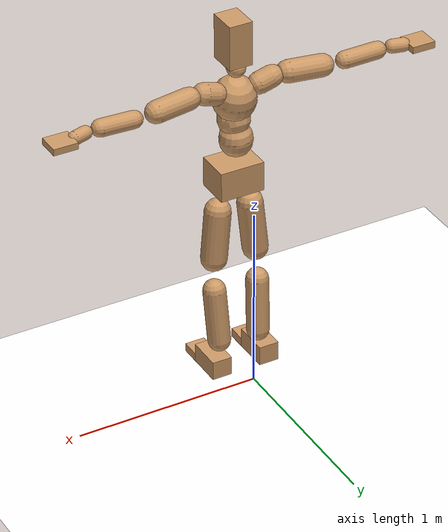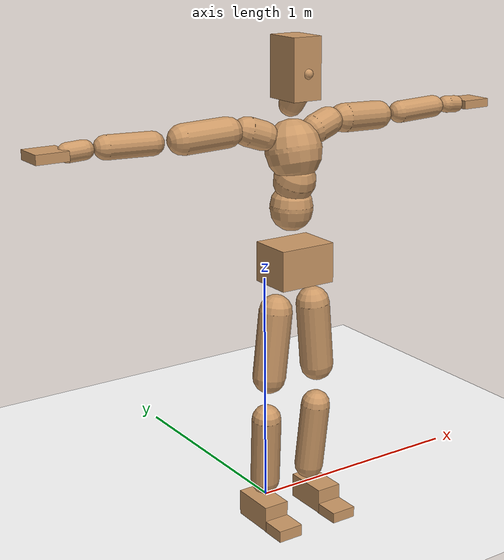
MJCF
<mujoco model="humanoid">
  <option integrator="implicitfast" />

  <visual>
    <global offwidth="1280" offheight="960" />
    <headlight active="1" ambient="0.34 0.34 0.34" diffuse="0.5 0.5 0.5" />
  </visual>

  <default>
    <joint damping="2" stiffness="2" armature="0.01" limited="true" solimplimit="0 .99 .01" />
    <geom condim="1" friction="0.7 0.005 0.0001" solimp=".99 .99 .003" solref="0.015 1" margin="0.001" rgba="0.8 0.6 .4 1" />
    <default class="smplcontact">
      <geom condim="3" friction="1. 0.005 0.0001" solref="0.015 1" solimp="0.98 0.98 0.001" priority="1" />
    </default>
    <default class="stiff_medium">
      <joint stiffness="10" />
    </default>
    <default class="stiff_medium_higher">
      <joint stiffness="50" />
    </default>
    <default class="stiff_high">
      <joint stiffness="100" />
    </default>
  </default>

  <asset>
    <texture type="skybox" builtin="gradient" rgb1="0.99 0.99 0.99" rgb2="0.608 0.828 0.892" width="100" />
    <texture builtin="flat" height="1278" mark="cross" markrgb="1 1 1" name="texgeom" random="0.01" rgb1="0.8 0.6 0.4" rgb2="0.8 0.6 0.4" type="cube" width="127" />
    <texture name="texplane" type="2d" builtin="checker" markrgb="1 1 1" rgb1="0.756 0.772 0.76" rgb2="0.6 0.6 0.6" width="100" height="100" />
    <material name="MatPlane" reflectance="0.5" texture="texplane" texrepeat="1 1" texuniform="true" />
    <material name="geom" texture="texgeom" texuniform="true" />
  </asset>

  <worldbody>
    <light name="tracking_light" pos="0 0 7" dir="0 0 -1" directional="true" cutoff="100" exponent="1" diffuse="1 1 1" specular="0.1 0.1 0.1" mode="trackcom" />
    <camera name="back" pos="0 3 2.4" xyaxes="-1 0 0 0 -1 2" mode="trackcom" />
    <camera name="side" pos="-3 0 2.4" xyaxes="0 -1 0 1 0 2" mode="trackcom" />
    <camera name="front_side" pos="-2.8 -2.8 0.8" xyaxes="0.5 -0.5 0 0.1 0.1 1" mode="trackcom" />
    <geom condim="3" name="floor" pos="0 0 0" rgba="1 1 1 1" size="100 100 .2" type="plane" material="MatPlane" />
    <body name="Pelvis" pos="-0.0018 -0.2233 1.13976" euler="90 0 0">
      <site name="Pelvis" size="0.01" />
      <freejoint name="Pelvis" />
      <geom type="box" pos="-0.0000 -0.0121 -0.0055" size="0.120925 0.0816726 0.0938896" quat="1.0000 0.0000 0.0000 0.0000" density="3165.830099" name="Pelvis" />
      <body name="L_Hip" pos="0.0847066 -0.111398 -0.00828784">
        <joint name="L_Hip_x" type="hinge" pos="0 0 0" axis="1 0 0" stiffness="18.556347" range="-160.0 22.92" class="stiff_medium" damping="30.570907053409652" armature="0.02238420353048563"/>
        <joint name="L_Hip_y" type="hinge" pos="0 0 0" axis="0 1 0" stiffness="18.5209526" range="-70.0 70.0" class="stiff_medium" damping="19.536497972684764" armature="0.020607727975974405"/>
        <joint name="L_Hip_z" type="hinge" pos="0 0 0" axis="0 0 1" stiffness="18.5280481" range="-28.65 90.0" class="stiff_medium" damping="20.366246980150123" armature="0.022386816669397246"/>
        <geom type="capsule" density="2040.816327" fromto="0.00840972 -0.09141 -0.00109692 0.0333951 -0.365884 -0.00438768" size="0.0695688" name="L_Hip" />
        <body name="L_Knee" pos="0.0418048 -0.457294 -0.0054846">
          <joint name="L_Knee_x" type="hinge" pos="0 0 0" axis="1 0 0" range="-5.16 171.89" damping="16.11973156776065" armature="0.02205979425157348" stiffness="3.68098608"/>
          <joint name="L_Knee_y" type="hinge" pos="0 0 0" axis="0 1 0" range="-4.58 6.88" damping="15.505784638232782" armature="0.02030901465420849" stiffness="3.69954798"/>
          <joint name="L_Knee_z" type="hinge" pos="0 0 0" axis="0 0 1" range="-6.88 4.58" damping="16.098641564312224" armature="0.02207225123941547" stiffness="3.66928844"/>
          <geom type="capsule" density="1234.567901" fromto="-0.00329076 -0.0970165 -0.0106036 -0.0132849 -0.388066 -0.042658" size="0.0611979" name="L_Knee" />
          <body name="L_Ankle" pos="-0.0165757 -0.485082 -0.0532616">
            <joint name="L_Ankle_x" type="hinge" pos="0 0 0" axis="1 0 0" range="-45.84 45.84" class="stiff_medium" damping="11.405556159537193" armature="0.020482326295280223" stiffness="17.642135500000002"/>
            <joint name="L_Ankle_y" type="hinge" pos="0 0 0" axis="0 1 0" range="-74.48 22.92" class="stiff_medium" damping="5.692618968601505" armature="0.020409416132761246" stiffness="17.642135"/>
            <joint name="L_Ankle_z" type="hinge" pos="0 0 0" axis="0 0 1" range="-4.58 4.58" class="stiff_medium" damping="11.251310979897617" armature="0.019932082757234494" stiffness="17.642132299999997"/>
            <geom type="box" pos="0.028398 -0.0291293 0.029495" size="0.054637 0.0524877 0.096152" quat="1.0000 0.0000 0.0000 0.0000" density="449.071558" name="L_Ankle" class="smplcontact" />
            <body name="L_Toe" pos="0.0321763 -0.068009 0.145403">
              <joint name="L_Toe_x" type="hinge" pos="0 0 0" axis="1 0 0" range="-91.67 22.92" armature="0.01965528842011614" damping="3.7243037939216093" stiffness="3.5284241199999995"/>
              <joint name="L_Toe_y" type="hinge" pos="0 0 0" axis="0 1 0" range="-4.58 4.58" armature="0.019320617812724785" damping="3.6924608656611086" stiffness="3.52842424"/>
              <joint name="L_Toe_z" type="hinge" pos="0 0 0" axis="0 0 1" range="-4.58 4.58" armature="0.01864392114524846" damping="3.6272209423469683" stiffness="3.528424"/>
              <geom type="box" pos="-0.0036564 0.0067034 0.0302262" size="0.0540714 0.022624 0.0561075" quat="1.0000 0.0000 0.0000 0.0000" density="423.206892" name="L_Toe" class="smplcontact" />
            </body>
          </body>
        </body>
      </body>
      <body name="R_Hip" pos="-0.0825128 -0.110301 -0.00524084">
        <joint name="R_Hip_x" type="hinge" pos="0 0 0" axis="1 0 0" stiffness="18.556347" range="-160.0 22.92" class="stiff_medium" damping="30.570907053409652" armature="0.02238420353048563"/>
        <joint name="R_Hip_y" type="hinge" pos="0 0 0" axis="0 1 0" stiffness="18.5209526" range="-70.0 70.0" class="stiff_medium" damping="19.536497972684764" armature="0.020607727975974405"/>
        <joint name="R_Hip_z" type="hinge" pos="0 0 0" axis="0 0 1" stiffness="18.5280481" range="-90.0 28.65" class="stiff_medium" damping="20.366246980150123" armature="0.022386816669397246"/>
        <geom type="capsule" density="2040.816327" fromto="-0.00938476 -0.0932382 -0.00219384 -0.0372953 -0.373075 -0.00865348" size="0.0685507" name="R_Hip" />
        <body name="R_Knee" pos="-0.04668 -0.466313 -0.0108473">
          <joint name="R_Knee_x" type="hinge" pos="0 0 0" axis="1 0 0" range="-5.16 171.89" damping="16.11973156776065" armature="0.02205979425157348" stiffness="3.68098608"/>
          <joint name="R_Knee_y" type="hinge" pos="0 0 0" axis="0 1 0" range="-6.88 4.58" damping="15.505784638232782" armature="0.02030901465420849" stiffness="3.69954798"/>
          <joint name="R_Knee_z" type="hinge" pos="0 0 0" axis="0 0 1" range="-4.58 6.88" damping="16.098641564312224" armature="0.02207225123941547" stiffness="3.66928844"/>
          <geom type="capsule" density="1234.567901" fromto="0.00390016 -0.0971384 -0.0103598 0.0153569 -0.388432 -0.0411954" size="0.0611979" name="R_Knee" />
          <body name="R_Ankle" pos="0.019257 -0.48557 -0.0515552">
            <joint name="R_Ankle_x" type="hinge" pos="0 0 0" axis="1 0 0" range="-45.84 45.84" class="stiff_medium" damping="11.405556159537193" armature="0.020482326295280223" stiffness="17.642135500000002"/>
            <joint name="R_Ankle_y" type="hinge" pos="0 0 0" axis="0 1 0" range="-22.92 74.48" class="stiff_medium" damping="5.692618968601505" armature="0.020409416132761246" stiffness="17.642135"/>
            <joint name="R_Ankle_z" type="hinge" pos="0 0 0" axis="0 0 1" range="-4.58 4.58" class="stiff_medium" damping="11.251310979897617" armature="0.019932082757234494" stiffness="17.642132299999997"/>
            <geom type="box" pos="-0.0258386 -0.0212071 0.0312013" size="0.054637 0.0540714 0.0978488" quat="1.0000 0.0000 0.0000 0.0000" density="434.700981" name="R_Ankle" class="smplcontact" />
            <body name="R_Toe" pos="-0.0309575 -0.0586243 0.150278">
              <joint name="R_Toe_x" type="hinge" pos="0 0 0" axis="1 0 0" range="-91.67 22.92" armature="0.01965528842011614" damping="3.7243037939216093" stiffness="3.5284241199999995"/>
              <joint name="R_Toe_y" type="hinge" pos="0 0 0" axis="0 1 0" range="-4.58 4.58" armature="0.019320617812724785" damping="3.6924608656611086" stiffness="3.52842424"/>
              <joint name="R_Toe_z" type="hinge" pos="0 0 0" axis="0 0 1" range="-4.58 4.58" armature="0.01864392114524846" damping="3.6272209423469683" stiffness="3.528424"/>
              <geom type="box" pos="0.00511896 0.0054846 0.0276668" size="0.0541845 0.0244339 0.0557682" quat="1.0000 0.0000 0.0000 0.0000" density="407.384095" name="R_Toe" class="smplcontact" />
            </body>
          </body>
        </body>
      </body>
      <body name="Torso" pos="-0.0029375 0.128075 -0.0313725">
        <joint name="Torso_x" type="hinge" pos="0 0 0" axis="1 0 0" range="-25.78 57.3" class="stiff_medium" damping="25.974242984270614" armature="0.018337134669673637" stiffness="16.352034897959182"/>
        <joint name="Torso_y" type="hinge" pos="0 0 0" axis="0 1 0" range="-57.3 57.3" class="stiff_high" damping="37.72352159467362" armature="0.022216497527017185" stiffness="160.13596199999998"/>
        <joint name="Torso_z" type="hinge" pos="0 0 0" axis="0 0 1" range="-34.38 34.38" class="stiff_high" damping="35.791095156464266" armature="0.019674936704073866" stiffness="162.77085306122447"/>
        <geom type="capsule" density="2040.816327" fromto="0.0029375 0.07144 0.0005875 0.003525 0.0873025 0.000705" size="0.0869893" name="Torso" />
        <body name="Spine" pos="0.0064625 0.15886 0.0012925">
          <joint name="Spine_x" type="hinge" pos="0 0 0" axis="1 0 0" stiffness="16.04869" range="-25.78 57.3" class="stiff_medium" damping="25.06369727104499" armature="0.017396751756881733"/>
          <joint name="Spine_y" type="hinge" pos="0 0 0" axis="0 1 0" stiffness="16.0019376" range="-57.3 57.3" class="stiff_high" damping="15.092553260802195" armature="0.022241951414737476"/>
          <joint name="Spine_z" type="hinge" pos="0 0 0" axis="0 0 1" stiffness="31.837057600000005" range="-34.38 34.38" class="stiff_high" damping="21.453231213750016" armature="0.020077979536242362"/>
          <geom type="capsule" density="2040.816327" fromto="0.0008225 0.027965 0.013395 0.00094 0.0341925 0.01645" size="0.0854056" name="Spine" />
          <body name="Chest" pos="0.0017625 0.0621575 0.029845">
            <joint name="Chest_x" type="hinge" pos="0 0 0" axis="1 0 0" stiffness="15.784377916666665" range="-25.78 57.3" class="stiff_medium" damping="24.50394449532761" armature="0.01690682321751926"/>
            <joint name="Chest_y" type="hinge" pos="0 0 0" axis="0 1 0" stiffness="17.060357391304354" range="-57.3 57.3" class="stiff_high" damping="15.593786587091003" armature="0.022270761844473512"/>
            <joint name="Chest_z" type="hinge" pos="0 0 0" axis="0 0 1" stiffness="31.463411250000007" range="-34.38 34.38" class="stiff_high" damping="21.467063646392138" armature="0.020342624588454438"/>
            <geom type="capsule" density="2040.816327" fromto="-0.0010575 0.080135 -0.0203275 -0.001175 0.0978775 -0.02491" size="0.113346" name="Chest" />
            <body name="Neck" pos="-0.00329 0.251333 -0.0504075">
              <joint name="Neck_x" type="hinge" pos="0 0 0" axis="1 0 0" range="-28.65 57.3" class="stiff_medium_higher" damping="12.386562860931818" armature="0.012503119690239761" stiffness="61.355463"/>
              <joint name="Neck_y" type="hinge" pos="0 0 0" axis="0 1 0" range="-40.11 40.11" class="stiff_medium_higher" damping="12.478153737546902" armature="0.01276907920155923" stiffness="60.969283"/>
              <joint name="Neck_z" type="hinge" pos="0 0 0" axis="0 0 1" range="-40.11 40.11" class="stiff_medium_higher" damping="12.26752320269316" armature="0.0124766525597076" stiffness="60.309495999999996"/>
              <geom type="capsule" density="1000" fromto="0.001175 0.015275 0.0121025 0.0048175 0.0611 0.0482925" size="0.0493203" name="Neck" />
              <body name="Head" pos="0.00542776 0.067847 0.0535469">
                <joint name="Head_x" type="hinge" pos="0 0 0" axis="1 0 0" range="-28.65 57.3" class="stiff_medium_higher" damping="2.4255506430620355" armature="0.01239051994530892" stiffness="59.352795"/>
                <joint name="Head_y" type="hinge" pos="0 0 0" axis="0 1 0" range="-40.11 40.11" class="stiff_medium_higher" damping="2.4255481875524256" armature="0.012390490265480697" stiffness="59.352817"/>
                <joint name="Head_z" type="hinge" pos="0 0 0" axis="0 0 1" range="-40.11 40.11" class="stiff_medium_higher" damping="2.425550960116784" armature="0.012390522349509277" stiffness="59.35279899999999"/>
                <geom type="box" pos="-0.00438396 0.0914369 -0.0121081" size="0.0632543 0.120455 0.0793288" quat="1.0000 0.0000 0.0000 0.0000" density="1018.069894" name="Head" />
                <geom type="capsule" name="nose" size="0.020876 0.010438" pos="0 0.073066 0.05219" quat="1 0 0 0" mass="0" contype="0" conaffinity="0" />
              </body>
            </body>
            <body name="L_Thorax" pos="0.0960414 0.148328 -0.0415611">
              <joint name="L_Thorax_x" type="hinge" pos="0 0 0" axis="1 0 0" range="-10.89 4.58" class="stiff_medium_higher" damping="39.476533342108986" armature="0.021085897405615135" stiffness="92.38382500000002"/>
              <joint name="L_Thorax_y" type="hinge" pos="0 0 0" axis="0 1 0" range="-28.65 17.19" class="stiff_medium_higher" damping="40.73278921234496" armature="0.022409102271800662" stiffness="92.5494525"/>
              <joint name="L_Thorax_z" type="hinge" pos="0 0 0" axis="0 0 1" range="-31.51 40.11" class="stiff_medium_higher" damping="40.73318704701572" armature="0.022410300585117983" stiffness="92.5463115"/>
              <geom type="capsule" density="1000" fromto="0.0221822 0.00743468 -0.00219384 0.0887286 0.0297387 -0.00865348" size="0.0589355" name="L_Thorax" />
              <body name="L_Shoulder" pos="0.110911 0.0371734 -0.0108473">
                <joint name="L_Shoulder_x" type="hinge" pos="0 0 0" axis="1 0 0" range="-97.4 97.4" class="stiff_medium" damping="11.688234725418583" armature="0.02055721141363154" stiffness="18.4599766"/>
                <joint name="L_Shoulder_y" type="hinge" pos="0 0 0" axis="0 1 0" range="-108.86 80.21" class="stiff_medium" damping="12.200723490278284" armature="0.0223580515065574" stiffness="18.4941645"/>
                <joint name="L_Shoulder_z" type="hinge" pos="0 0 0" axis="0 0 1" range="-97.4 85.94" class="stiff_medium" damping="12.201472502190164" armature="0.022359565615843416" stiffness="18.4951828"/>
                <geom type="capsule" density="1000" fromto="0.0632557 -0.00316888 -0.0067034 0.253145 -0.0124318 -0.0268136" size="0.058483" name="L_Shoulder" />
                <body name="L_Elbow" pos="0.3164 -0.0156006 -0.033517">
                  <joint name="L_Elbow_x" type="hinge" pos="0 0 0" axis="1 0 0" range="-17.19 4.58" damping="9.514780576527448" armature="0.01973143027884173" stiffness="3.67053166"/>
                  <joint name="L_Elbow_y" type="hinge" pos="0 0 0" axis="0 1 0" range="-180.0 17.19" damping="10.072084516435584" armature="0.022110243642904755" stiffness="3.67058412"/>
                  <joint name="L_Elbow_z" type="hinge" pos="0 0 0" axis="0 0 1" range="-100.84 4.58" damping="10.072871319934917" armature="0.0221181824356007" stiffness="3.66983994"/>
                  <geom type="capsule" density="1000" fromto="0.0606962 0.00219384 -0.00024376 0.243029 0.00877536 -0.00109692" size="0.0458136" name="L_Elbow" />
                  <body name="L_Wrist" pos="0.303725 0.0109692 -0.00146256">
                    <joint name="L_Wrist_x" type="hinge" pos="0 0 0" axis="1 0 0" range="-180.0 22.92" armature="0.0195284286301062" damping="3.7381804060134542" stiffness="3.57785898"/>
                    <joint name="L_Wrist_y" type="hinge" pos="0 0 0" axis="0 1 0" range="-17.19 17.19" armature="0.021303450645872583" damping="3.9082738997252195" stiffness="3.5850072199999996"/>
                    <joint name="L_Wrist_z" type="hinge" pos="0 0 0" axis="0 0 1" range="-22.92 22.92" armature="0.021401534886897444" damping="3.916001931990902" stiffness="3.5827035800000004"/>
                    <geom type="capsule" density="1000" fromto="0.0204758 -0.00195008 -0.0036564 0.0819034 -0.0079222 -0.0146256" size="0.0359722" name="L_Wrist" class="smplcontact" />
                    <body name="L_Hand" pos="0.102379 -0.00999416 -0.0181601">
                      <joint name="L_Hand_x" type="hinge" pos="0 0 0" axis="1 0 0" range="-17.19 17.19" armature="0.01865225486239554" damping="3.6280347736162577" stiffness="3.52843032"/>
                      <joint name="L_Hand_y" type="hinge" pos="0 0 0" axis="0 1 0" range="-51.57 51.57" armature="0.020092416665066528" damping="3.7654929273555684" stiffness="3.528429960000001"/>
                      <joint name="L_Hand_z" type="hinge" pos="0 0 0" axis="0 0 1" range="-91.67 91.67" armature="0.02047631457398981" damping="3.801295616319528" stiffness="3.528429960000001"/>
                      <geom type="box" pos="0.0600868 0.0012188 -0.00706904" size="0.0661752 0.017873 0.0608586" quat="1.0000 0.0000 0.0000 0.0000" density="400.552564" name="L_Hand" class="smplcontact" />
                    </body>
                  </body>
                </body>
              </body>
            </body>
            <body name="R_Thorax" pos="-0.0996978 0.144793 -0.0470457">
              <joint name="R_Thorax_x" type="hinge" pos="0 0 0" axis="1 0 0" range="-10.89 4.58" class="stiff_medium_higher" damping="39.476533342108986" armature="0.021085897405615135" stiffness="92.38382500000002"/>
              <joint name="R_Thorax_y" type="hinge" pos="0 0 0" axis="0 1 0" range="-17.19 28.65" class="stiff_medium_higher" damping="40.73278921234496" armature="0.022409102271800662" stiffness="92.5494525"/>
              <joint name="R_Thorax_z" type="hinge" pos="0 0 0" axis="0 0 1" range="-40.11 31.51" class="stiff_medium_higher" damping="40.73318704701572" armature="0.022410300585117983" stiffness="92.5463115"/>
              <geom type="capsule" density="1000" fromto="-0.023401 0.0079222 -0.00219384 -0.0936038 0.0316888 -0.00889724" size="0.0578043" name="R_Thorax" />
              <body name="R_Shoulder" pos="-0.117005 0.0397329 -0.0110911">
                <joint name="R_Shoulder_x" type="hinge" pos="0 0 0" axis="1 0 0" range="-97.4 97.4" class="stiff_medium" damping="11.688234725418583" armature="0.02055721141363154" stiffness="18.4599766"/>
                <joint name="R_Shoulder_y" type="hinge" pos="0 0 0" axis="0 1 0" range="-80.21 108.86" class="stiff_medium" damping="12.200723490278284" armature="0.0223580515065574" stiffness="18.4941645"/>
                <joint name="R_Shoulder_z" type="hinge" pos="0 0 0" axis="0 0 1" range="-85.94 97.4" class="stiff_medium" damping="12.201472502190164" armature="0.022359565615843416" stiffness="18.4951828"/>
                <geom type="capsule" density="1000" fromto="-0.0617932 -0.00329076 -0.00524084 -0.247416 -0.0130412 -0.0208415" size="0.0600667" name="R_Shoulder" />
                <body name="R_Elbow" pos="-0.30921 -0.01621 -0.0260823">
                  <joint name="R_Elbow_x" type="hinge" pos="0 0 0" axis="1 0 0" range="-17.19 4.58" damping="9.514780576527448" armature="0.01973143027884173" stiffness="3.67053166"/>
                  <joint name="R_Elbow_y" type="hinge" pos="0 0 0" axis="0 1 0" range="-17.19 180.0" damping="10.072084516435584" armature="0.022110243642904755" stiffness="3.67058412"/>
                  <joint name="R_Elbow_z" type="hinge" pos="0 0 0" axis="0 0 1" range="-4.58 100.84" damping="10.072871319934917" armature="0.0221181824356007" stiffness="3.66983994"/>
                  <geom type="capsule" density="1000" fromto="-0.0622807 0.00195008 -0.00134068 -0.248879 0.00755656 -0.00536272" size="0.046153" name="R_Elbow" />
                  <body name="R_Wrist" pos="-0.31116 0.00950664 -0.00682528">
                    <joint name="R_Wrist_x" type="hinge" pos="0 0 0" axis="1 0 0" range="-180.0 22.92" armature="0.0195284286301062" damping="3.7381804060134542" stiffness="3.57785898"/>
                    <joint name="R_Wrist_y" type="hinge" pos="0 0 0" axis="0 1 0" range="-17.19 17.19" armature="0.021303450645872583" damping="3.9082738997252195" stiffness="3.5850072199999996"/>
                    <joint name="R_Wrist_z" type="hinge" pos="0 0 0" axis="0 0 1" range="-22.92 22.92" armature="0.021401534886897444" damping="3.916001931990902" stiffness="3.5827035800000004"/>
                    <geom type="capsule" density="1000" fromto="-0.0205977 -0.00146256 -0.00255948 -0.0825128 -0.00597212 -0.010116" size="0.0368771" name="R_Wrist" class="smplcontact" />
                    <body name="R_Hand" pos="-0.10311 -0.00743468 -0.0125536">
                      <joint name="R_Hand_x" type="hinge" pos="0 0 0" axis="1 0 0" range="-17.19 17.19" armature="0.01865225486239554" damping="3.6280347736162577" stiffness="3.52843032"/>
                      <joint name="R_Hand_y" type="hinge" pos="0 0 0" axis="0 1 0" range="-51.57 51.57" armature="0.020092416665066528" damping="3.7654929273555684" stiffness="3.528429960000001"/>
                      <joint name="R_Hand_z" type="hinge" pos="0 0 0" axis="0 0 1" range="-91.67 91.67" armature="0.02047631457398981" damping="3.801295616319528" stiffness="3.528429960000001"/>
                      <geom type="box" pos="-0.0563086 -0.00109692 -0.00962852" size="0.0643653 0.0185517 0.0617635" quat="1.0000 0.0000 0.0000 0.0000" density="403.679611" name="R_Hand" class="smplcontact" />
                    </body>
                  </body>
                </body>
              </body>
            </body>
          </body>
        </body>
      </body>
    </body>
  </worldbody>
  <actuator>
    <general name="L_Hip_x" joint="L_Hip_x" biastype="affine" gainprm="533.1796372922157" biasprm="-399.5640973103921 -334.014246 -4.07612094045462" ctrllimited="true" ctrlrange="-1 1" forcerange="-668.028492 668.028492" />
    <general name="L_Hip_y" joint="L_Hip_y" biastype="affine" gainprm="407.2970203795134" biasprm="0.0 -333.3771468 -3.9072995945369526" ctrllimited="true" ctrlrange="-1 1" forcerange="-666.7542936 666.7542936" />
    <general name="L_Hip_z" joint="L_Hip_z" biastype="affine" gainprm="345.3164671416585" biasprm="178.55175102520647 -333.5048658 -4.0732493960300244" ctrllimited="true" ctrlrange="-1 1" forcerange="-667.0097316 667.0097316" />
    <general name="L_Knee_x" joint="L_Knee_x" biastype="affine" gainprm="511.85858007540855" biasprm="482.0230503020212 -331.2887472 -4.029932891940162" ctrllimited="true" ctrlrange="-1 1" forcerange="-662.5774944 662.5774944" />
    <general name="L_Knee_y" joint="L_Knee_y" biastype="affine" gainprm="33.2983844447108" biasprm="6.6829218344533015 -332.95931820000004 -3.8764461595581956" ctrllimited="true" ctrlrange="-1 1" forcerange="-665.9186364000001 665.9186364000001" />
    <general name="L_Knee_z" joint="L_Knee_z" biastype="affine" gainprm="33.02602852407205" biasprm="-6.6282605240284225 -330.2359596 -4.024660391078056" ctrllimited="true" ctrlrange="-1 1" forcerange="-660.4719192 660.4719192" />
    <general name="L_Ankle_x" joint="L_Ankle_x" biastype="affine" gainprm="127.03273231875863" biasprm="0.0 -158.7792195 -3.8018520531790645" ctrllimited="true" ctrlrange="-1 1" forcerange="-317.558439 317.558439" />
    <general name="L_Ankle_y" joint="L_Ankle_y" biastype="affine" gainprm="134.9584181629719" biasprm="-71.44205380372516 -158.77921500000002 -3.7950793124010036" ctrllimited="true" ctrlrange="-1 1" forcerange="-317.55843000000004 317.55843000000004" />
    <general name="L_Ankle_z" joint="L_Ankle_z" biastype="affine" gainprm="12.692186049060673" biasprm="0.0 -158.7791907 -3.7504369932992057" ctrllimited="true" ctrlrange="-1 1" forcerange="-317.5583814 317.5583814" />
    <general name="L_Toe_x" joint="L_Toe_x" biastype="affine" gainprm="127.02154015956204" biasprm="-76.20849014721956 -127.02326831999999 -1.4897215175686438" ctrllimited="true" ctrlrange="-1 1" forcerange="-254.04653663999997 254.04653663999997" />
    <general name="L_Toe_y" joint="L_Toe_y" biastype="affine" gainprm="10.153742450757049" biasprm="0.0 -127.02327264 -1.4769843462644436" ctrllimited="true" ctrlrange="-1 1" forcerange="-254.04654528 254.04654528" />
    <general name="L_Toe_z" joint="L_Toe_z" biastype="affine" gainprm="10.15374176010932" biasprm="0.0 -127.023264 -1.4508883769387875" ctrllimited="true" ctrlrange="-1 1" forcerange="-254.046528 254.046528" />
    <general name="R_Hip_x" joint="R_Hip_x" biastype="affine" gainprm="533.1796372922157" biasprm="-399.5640973103921 -334.014246 -4.07612094045462" ctrllimited="true" ctrlrange="-1 1" forcerange="-668.028492 668.028492" />
    <general name="R_Hip_y" joint="R_Hip_y" biastype="affine" gainprm="407.2970203795134" biasprm="0.0 -333.3771468 -3.9072995945369526" ctrllimited="true" ctrlrange="-1 1" forcerange="-666.7542936 666.7542936" />
    <general name="R_Hip_z" joint="R_Hip_z" biastype="affine" gainprm="345.3164671416585" biasprm="-178.55175102520647 -333.5048658 -4.0732493960300244" ctrllimited="true" ctrlrange="-1 1" forcerange="-667.0097316 667.0097316" />
    <general name="R_Knee_x" joint="R_Knee_x" biastype="affine" gainprm="511.85858007540855" biasprm="482.0230503020212 -331.2887472 -4.029932891940162" ctrllimited="true" ctrlrange="-1 1" forcerange="-662.5774944 662.5774944" />
    <general name="R_Knee_y" joint="R_Knee_y" biastype="affine" gainprm="33.2983844447108" biasprm="-6.6829218344533015 -332.95931820000004 -3.8764461595581956" ctrllimited="true" ctrlrange="-1 1" forcerange="-665.9186364000001 665.9186364000001" />
    <general name="R_Knee_z" joint="R_Knee_z" biastype="affine" gainprm="33.02602852407205" biasprm="6.6282605240284225 -330.2359596 -4.024660391078056" ctrllimited="true" ctrlrange="-1 1" forcerange="-660.4719192 660.4719192" />
    <general name="R_Ankle_x" joint="R_Ankle_x" biastype="affine" gainprm="127.03273231875863" biasprm="0.0 -158.7792195 -3.8018520531790645" ctrllimited="true" ctrlrange="-1 1" forcerange="-317.558439 317.558439" />
    <general name="R_Ankle_y" joint="R_Ankle_y" biastype="affine" gainprm="134.9584181629719" biasprm="71.44205380372516 -158.77921500000002 -3.7950793124010036" ctrllimited="true" ctrlrange="-1 1" forcerange="-317.55843000000004 317.55843000000004" />
    <general name="R_Ankle_z" joint="R_Ankle_z" biastype="affine" gainprm="12.692186049060673" biasprm="0.0 -158.7791907 -3.7504369932992057" ctrllimited="true" ctrlrange="-1 1" forcerange="-317.5583814 317.5583814" />
    <general name="R_Toe_x" joint="R_Toe_x" biastype="affine" gainprm="127.02154015956204" biasprm="-76.20849014721956 -127.02326831999999 -1.4897215175686438" ctrllimited="true" ctrlrange="-1 1" forcerange="-254.04653663999997 254.04653663999997" />
    <general name="R_Toe_y" joint="R_Toe_y" biastype="affine" gainprm="10.153742450757049" biasprm="0.0 -127.02327264 -1.4769843462644436" ctrllimited="true" ctrlrange="-1 1" forcerange="-254.04654528 254.04654528" />
    <general name="R_Toe_z" joint="R_Toe_z" biastype="affine" gainprm="10.15374176010932" biasprm="0.0 -127.023264 -1.4508883769387875" ctrllimited="true" ctrlrange="-1 1" forcerange="-254.046528 254.046528" />
    <general name="Torso_x" joint="Torso_x" biastype="affine" gainprm="284.5292419513567" biasprm="107.9485039276211 -392.44883755102035 -6.926464795805497" ctrllimited="true" ctrlrange="-1 1" forcerange="-588.6732563265306 588.6732563265306" />
    <general name="Torso_y" joint="Torso_y" biastype="affine" gainprm="384.3546188111769" biasprm="0.0 -384.32630879999994 -7.544704318934724" ctrllimited="true" ctrlrange="-1 1" forcerange="-576.4894631999999 576.4894631999999" />
    <general name="Torso_z" joint="Torso_z" biastype="affine" gainprm="234.40729390410272" biasprm="0.0 -390.6500473469387 -7.158219031292853" ctrllimited="true" ctrlrange="-1 1" forcerange="-585.9750710204081 585.9750710204081" />
    <general name="Spine_x" joint="Spine_x" biastype="affine" gainprm="279.2509695892478" biasprm="105.94596246332557 -385.16855999999996 -6.683652605611997" ctrllimited="true" ctrlrange="-1 1" forcerange="-577.75284 577.75284" />
    <general name="Spine_y" joint="Spine_y" biastype="affine" gainprm="384.0747918002479" biasprm="0.0 -384.04650240000007 -7.546276630401097" ctrllimited="true" ctrlrange="-1 1" forcerange="-576.0697536000001 576.0697536000001" />
    <general name="Spine_z" joint="Spine_z" biastype="affine" gainprm="229.24369988642817" biasprm="0.0 -382.04469120000005 -7.151077071250005" ctrllimited="true" ctrlrange="-1 1" forcerange="-573.0670368000001 573.0670368000001" />
    <general name="Chest_x" joint="Chest_x" biastype="affine" gainprm="274.6518773552407" biasprm="104.20109742702438 -378.82507 -6.534385198754029" ctrllimited="true" ctrlrange="-1 1" forcerange="-568.2376049999999 568.2376049999999" />
    <general name="Chest_y" joint="Chest_y" biastype="affine" gainprm="409.47873794377495" biasprm="0.0 -409.44857739130447 -7.7968932935455015" ctrllimited="true" ctrlrange="-1 1" forcerange="-614.1728660869567 614.1728660869567" />
    <general name="Chest_z" joint="Chest_z" biastype="affine" gainprm="226.55324799859233" biasprm="0.0 -377.5609350000001 -7.155687882130713" ctrllimited="true" ctrlrange="-1 1" forcerange="-566.3414025000001 566.3414025000001" />
    <general name="Neck_x" joint="Neck_x" biastype="affine" gainprm="33.13439056558302" biasprm="11.04479685519434 -44.17593336 -0.9909250288745455" ctrllimited="true" ctrlrange="-1 1" forcerange="-88.35186672 88.35186672" />
    <general name="Neck_y" joint="Neck_y" biastype="affine" gainprm="30.7307821374796" biasprm="0.0 -43.89788376 -0.9982522990037522" ctrllimited="true" ctrlrange="-1 1" forcerange="-87.79576752 87.79576752" />
    <general name="Neck_z" joint="Neck_z" biastype="affine" gainprm="30.39822499466161" biasprm="0.0 -43.42283712 -0.9814018562154528" ctrllimited="true" ctrlrange="-1 1" forcerange="-86.84567424 86.84567424" />
    <general name="Head_x" joint="Head_x" biastype="affine" gainprm="21.368580123435606" biasprm="7.122860041145202 -28.489341600000003 -0.9702202572248142" ctrllimited="true" ctrlrange="-1 1" forcerange="-56.978683200000006 56.978683200000006" />
    <general name="Head_y" joint="Head_y" biastype="affine" gainprm="19.94401550775107" biasprm="0.0 -28.489352160000003 -0.9702192750209703" ctrllimited="true" ctrlrange="-1 1" forcerange="-56.978704320000006 56.978704320000006" />
    <general name="Head_z" joint="Head_z" biastype="affine" gainprm="19.944009459305562" biasprm="0.0 -28.489343519999995 -0.9702203840467137" ctrllimited="true" ctrlrange="-1 1" forcerange="-56.97868703999999 56.97868703999999" />
    <general name="L_Thorax_x" joint="L_Thorax_x" biastype="affine" gainprm="29.932629276968154" biasprm="-12.209107352144095 -221.72118000000006 -3.158122667368719" ctrllimited="true" ctrlrange="-1 1" forcerange="-443.4423600000001 443.4423600000001" />
    <general name="L_Thorax_y" joint="L_Thorax_y" biastype="affine" gainprm="88.85401902870669" biasprm="-22.213504757176672 -222.118686 -3.258623136987597" ctrllimited="true" ctrlrange="-1 1" forcerange="-444.237372 444.237372" />
    <general name="L_Thorax_z" joint="L_Thorax_z" biastype="affine" gainprm="138.82000145822107" biasprm="16.669254573313335 -222.1111476 -3.258654963761258" ctrllimited="true" ctrlrange="-1 1" forcerange="-444.2222952 444.2222952" />
    <general name="L_Shoulder_x" joint="L_Shoulder_x" biastype="affine" gainprm="150.62903992887337" biasprm="0.0 -88.60788768 -3.1168625934449556" ctrllimited="true" ctrlrange="-1 1" forcerange="-177.21577536 177.21577536" />
    <general name="L_Shoulder_y" joint="L_Shoulder_y" biastype="affine" gainprm="146.46907866782482" biasprm="-22.1946321670978 -88.77198960000001 -3.253526264074209" ctrllimited="true" ctrlrange="-1 1" forcerange="-177.54397920000002 177.54397920000002" />
    <general name="L_Shoulder_z" joint="L_Shoulder_z" biastype="affine" gainprm="142.0379725013884" biasprm="-8.87834168684365 -88.77687743999999 -3.253726000584044" ctrllimited="true" ctrlrange="-1 1" forcerange="-177.55375487999999 177.55375487999999" />
    <general name="L_Elbow_x" joint="L_Elbow_x" biastype="affine" gainprm="25.10367340336448" biasprm="-14.540988590557012 -132.13913976 -1.5223648922443918" ctrllimited="true" ctrlrange="-1 1" forcerange="-264.27827952 264.27827952" />
    <general name="L_Elbow_y" joint="L_Elbow_y" biastype="affine" gainprm="227.38925620578422" biasprm="-187.74402760212857 -132.14102832 -1.6115335226296936" ctrllimited="true" ctrlrange="-1 1" forcerange="-264.28205664 264.28205664" />
    <general name="L_Elbow_z" joint="L_Elbow_z" biastype="affine" gainprm="121.54021702342615" biasprm="-110.97952277248153 -132.11423784000002 -1.6116594111895868" ctrllimited="true" ctrlrange="-1 1" forcerange="-264.22847568000003 264.22847568000003" />
    <general name="L_Wrist_x" joint="L_Wrist_x" biastype="affine" gainprm="38.01427349753545" biasprm="-29.42677942535417 -21.467153879999998 -1.4952721624053817" ctrllimited="true" ctrlrange="-1 1" forcerange="-42.934307759999996 42.934307759999996" />
    <general name="L_Wrist_y" joint="L_Wrist_y" biastype="affine" gainprm="6.453488333924725" biasprm="0.0 -21.510043319999998 -1.563309559890088" ctrllimited="true" ctrlrange="-1 1" forcerange="-43.020086639999995 43.020086639999995" />
    <general name="L_Wrist_z" joint="L_Wrist_z" biastype="affine" gainprm="8.59912196864524" biasprm="0.0 -21.496221480000003 -1.566400772796361" ctrllimited="true" ctrlrange="-1 1" forcerange="-42.992442960000005 42.992442960000005" />
    <general name="L_Hand_x" joint="L_Hand_x" biastype="affine" gainprm="6.351642412364873" biasprm="0.0 -21.17058192 -1.451213909446503" ctrllimited="true" ctrlrange="-1 1" forcerange="-42.34116384 42.34116384" />
    <general name="L_Hand_y" joint="L_Hand_y" biastype="affine" gainprm="19.05492529295142" biasprm="0.0 -21.170579760000006 -1.5061971709422275" ctrllimited="true" ctrlrange="-1 1" forcerange="-42.34115952000001 42.34115952000001" />
    <general name="L_Hand_z" joint="L_Hand_z" biastype="affine" gainprm="33.87172777981107" biasprm="0.0 -21.170579760000006 -1.5205182465278113" ctrllimited="true" ctrlrange="-1 1" forcerange="-42.34115952000001 42.34115952000001" />
    <general name="R_Thorax_x" joint="R_Thorax_x" biastype="affine" gainprm="29.932629276968154" biasprm="-12.209107352144095 -221.72118000000006 -3.158122667368719" ctrllimited="true" ctrlrange="-1 1" forcerange="-443.4423600000001 443.4423600000001" />
    <general name="R_Thorax_y" joint="R_Thorax_y" biastype="affine" gainprm="88.85401902870669" biasprm="22.213504757176658 -222.118686 -3.258623136987597" ctrllimited="true" ctrlrange="-1 1" forcerange="-444.237372 444.237372" />
    <general name="R_Thorax_z" joint="R_Thorax_z" biastype="affine" gainprm="138.82000145822107" biasprm="-16.669254573313335 -222.1111476 -3.258654963761258" ctrllimited="true" ctrlrange="-1 1" forcerange="-444.2222952 444.2222952" />
    <general name="R_Shoulder_x" joint="R_Shoulder_x" biastype="affine" gainprm="150.62903992887337" biasprm="0.0 -88.60788768 -3.1168625934449556" ctrllimited="true" ctrlrange="-1 1" forcerange="-177.21577536 177.21577536" />
    <general name="R_Shoulder_y" joint="R_Shoulder_y" biastype="affine" gainprm="146.46907866782482" biasprm="22.1946321670978 -88.77198960000001 -3.253526264074209" ctrllimited="true" ctrlrange="-1 1" forcerange="-177.54397920000002 177.54397920000002" />
    <general name="R_Shoulder_z" joint="R_Shoulder_z" biastype="affine" gainprm="142.0379725013884" biasprm="8.878341686843628 -88.77687743999999 -3.253726000584044" ctrllimited="true" ctrlrange="-1 1" forcerange="-177.55375487999999 177.55375487999999" />
    <general name="R_Elbow_x" joint="R_Elbow_x" biastype="affine" gainprm="25.10367340336448" biasprm="-14.540988590557012 -132.13913976 -1.5223648922443918" ctrllimited="true" ctrlrange="-1 1" forcerange="-264.27827952 264.27827952" />
    <general name="R_Elbow_y" joint="R_Elbow_y" biastype="affine" gainprm="227.38925620578422" biasprm="187.74402760212857 -132.14102832 -1.6115335226296936" ctrllimited="true" ctrlrange="-1 1" forcerange="-264.28205664 264.28205664" />
    <general name="R_Elbow_z" joint="R_Elbow_z" biastype="affine" gainprm="121.54021702342615" biasprm="110.97952277248152 -132.11423784000002 -1.6116594111895868" ctrllimited="true" ctrlrange="-1 1" forcerange="-264.22847568000003 264.22847568000003" />
    <general name="R_Wrist_x" joint="R_Wrist_x" biastype="affine" gainprm="38.01427349753545" biasprm="-29.42677942535417 -21.467153879999998 -1.4952721624053817" ctrllimited="true" ctrlrange="-1 1" forcerange="-42.934307759999996 42.934307759999996" />
    <general name="R_Wrist_y" joint="R_Wrist_y" biastype="affine" gainprm="6.453488333924725" biasprm="0.0 -21.510043319999998 -1.563309559890088" ctrllimited="true" ctrlrange="-1 1" forcerange="-43.020086639999995 43.020086639999995" />
    <general name="R_Wrist_z" joint="R_Wrist_z" biastype="affine" gainprm="8.59912196864524" biasprm="0.0 -21.496221480000003 -1.566400772796361" ctrllimited="true" ctrlrange="-1 1" forcerange="-42.992442960000005 42.992442960000005" />
    <general name="R_Hand_x" joint="R_Hand_x" biastype="affine" gainprm="6.351642412364873" biasprm="0.0 -21.17058192 -1.451213909446503" ctrllimited="true" ctrlrange="-1 1" forcerange="-42.34116384 42.34116384" />
    <general name="R_Hand_y" joint="R_Hand_y" biastype="affine" gainprm="19.05492529295142" biasprm="0.0 -21.170579760000006 -1.5061971709422275" ctrllimited="true" ctrlrange="-1 1" forcerange="-42.34115952000001 42.34115952000001" />
    <general name="R_Hand_z" joint="R_Hand_z" biastype="affine" gainprm="33.87172777981107" biasprm="0.0 -21.170579760000006 -1.5205182465278113" ctrllimited="true" ctrlrange="-1 1" forcerange="-42.34115952000001 42.34115952000001" />
  </actuator>
  <contact>
    <exclude body1="Torso" body2="Chest" />
    <exclude body1="Head" body2="Chest" />
    <exclude body1="R_Knee" body2="R_Toe" />
    <exclude body1="R_Knee" body2="L_Ankle" />
    <exclude body1="R_Knee" body2="L_Toe" />
    <exclude body1="L_Knee" body2="L_Toe" />
    <exclude body1="L_Knee" body2="R_Ankle" />
    <exclude body1="L_Knee" body2="R_Toe" />
    <exclude body1="L_Shoulder" body2="Chest" />
    <exclude body1="R_Shoulder" body2="Chest" />
  </contact>
  <sensor>
    <framelinvel name="sensor_Pelvis_framelinvel" objtype="xbody" objname="Pelvis" />
    <framelinvel name="sensor_L_Hip_framelinvel" objtype="xbody" objname="L_Hip" />
    <framelinvel name="sensor_L_Knee_framelinvel" objtype="xbody" objname="L_Knee" />
    <framelinvel name="sensor_L_Ankle_framelinvel" objtype="xbody" objname="L_Ankle" />
    <framelinvel name="sensor_L_Toe_framelinvel" objtype="xbody" objname="L_Toe" />
    <framelinvel name="sensor_R_Hip_framelinvel" objtype="xbody" objname="R_Hip" />
    <framelinvel name="sensor_R_Knee_framelinvel" objtype="xbody" objname="R_Knee" />
    <framelinvel name="sensor_R_Ankle_framelinvel" objtype="xbody" objname="R_Ankle" />
    <framelinvel name="sensor_R_Toe_framelinvel" objtype="xbody" objname="R_Toe" />
    <framelinvel name="sensor_Torso_framelinvel" objtype="xbody" objname="Torso" />
    <framelinvel name="sensor_Spine_framelinvel" objtype="xbody" objname="Spine" />
    <framelinvel name="sensor_Chest_framelinvel" objtype="xbody" objname="Chest" />
    <framelinvel name="sensor_Neck_framelinvel" objtype="xbody" objname="Neck" />
    <framelinvel name="sensor_Head_framelinvel" objtype="xbody" objname="Head" />
    <framelinvel name="sensor_L_Thorax_framelinvel" objtype="xbody" objname="L_Thorax" />
    <framelinvel name="sensor_L_Shoulder_framelinvel" objtype="xbody" objname="L_Shoulder" />
    <framelinvel name="sensor_L_Elbow_framelinvel" objtype="xbody" objname="L_Elbow" />
    <framelinvel name="sensor_L_Wrist_framelinvel" objtype="xbody" objname="L_Wrist" />
    <framelinvel name="sensor_L_Hand_framelinvel" objtype="xbody" objname="L_Hand" />
    <framelinvel name="sensor_R_Thorax_framelinvel" objtype="xbody" objname="R_Thorax" />
    <framelinvel name="sensor_R_Shoulder_framelinvel" objtype="xbody" objname="R_Shoulder" />
    <framelinvel name="sensor_R_Elbow_framelinvel" objtype="xbody" objname="R_Elbow" />
    <framelinvel name="sensor_R_Wrist_framelinvel" objtype="xbody" objname="R_Wrist" />
    <framelinvel name="sensor_R_Hand_framelinvel" objtype="xbody" objname="R_Hand" />
    <frameangvel name="sensor_Pelvis_frameangvel" objtype="xbody" objname="Pelvis" />
    <frameangvel name="sensor_L_Hip_frameangvel" objtype="xbody" objname="L_Hip" />
    <frameangvel name="sensor_L_Knee_frameangvel" objtype="xbody" objname="L_Knee" />
    <frameangvel name="sensor_L_Ankle_frameangvel" objtype="xbody" objname="L_Ankle" />
    <frameangvel name="sensor_L_Toe_frameangvel" objtype="xbody" objname="L_Toe" />
    <frameangvel name="sensor_R_Hip_frameangvel" objtype="xbody" objname="R_Hip" />
    <frameangvel name="sensor_R_Knee_frameangvel" objtype="xbody" objname="R_Knee" />
    <frameangvel name="sensor_R_Ankle_frameangvel" objtype="xbody" objname="R_Ankle" />
    <frameangvel name="sensor_R_Toe_frameangvel" objtype="xbody" objname="R_Toe" />
    <frameangvel name="sensor_Torso_frameangvel" objtype="xbody" objname="Torso" />
    <frameangvel name="sensor_Spine_frameangvel" objtype="xbody" objname="Spine" />
    <frameangvel name="sensor_Chest_frameangvel" objtype="xbody" objname="Chest" />
    <frameangvel name="sensor_Neck_frameangvel" objtype="xbody" objname="Neck" />
    <frameangvel name="sensor_Head_frameangvel" objtype="xbody" objname="Head" />
    <frameangvel name="sensor_L_Thorax_frameangvel" objtype="xbody" objname="L_Thorax" />
    <frameangvel name="sensor_L_Shoulder_frameangvel" objtype="xbody" objname="L_Shoulder" />
    <frameangvel name="sensor_L_Elbow_frameangvel" objtype="xbody" objname="L_Elbow" />
    <frameangvel name="sensor_L_Wrist_frameangvel" objtype="xbody" objname="L_Wrist" />
    <frameangvel name="sensor_L_Hand_frameangvel" objtype="xbody" objname="L_Hand" />
    <frameangvel name="sensor_R_Thorax_frameangvel" objtype="xbody" objname="R_Thorax" />
    <frameangvel name="sensor_R_Shoulder_frameangvel" objtype="xbody" objname="R_Shoulder" />
    <frameangvel name="sensor_R_Elbow_frameangvel" objtype="xbody" objname="R_Elbow" />
    <frameangvel name="sensor_R_Wrist_frameangvel" objtype="xbody" objname="R_Wrist" />
    <frameangvel name="sensor_R_Hand_frameangvel" objtype="xbody" objname="R_Hand" />
    <subtreelinvel name="Chest_subtreelinvel" body="Chest" />
    <gyro name="Pelvis_gyro" site="Pelvis" />
  </sensor>
</mujoco>
